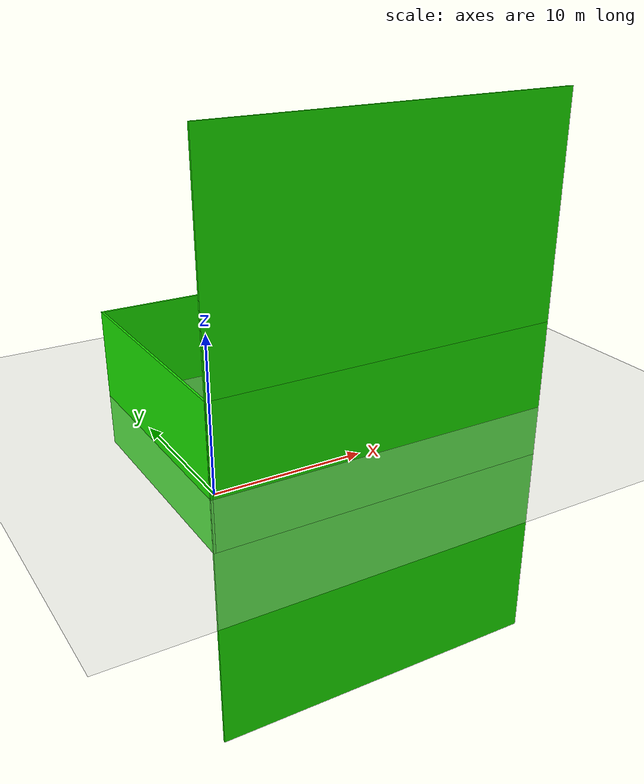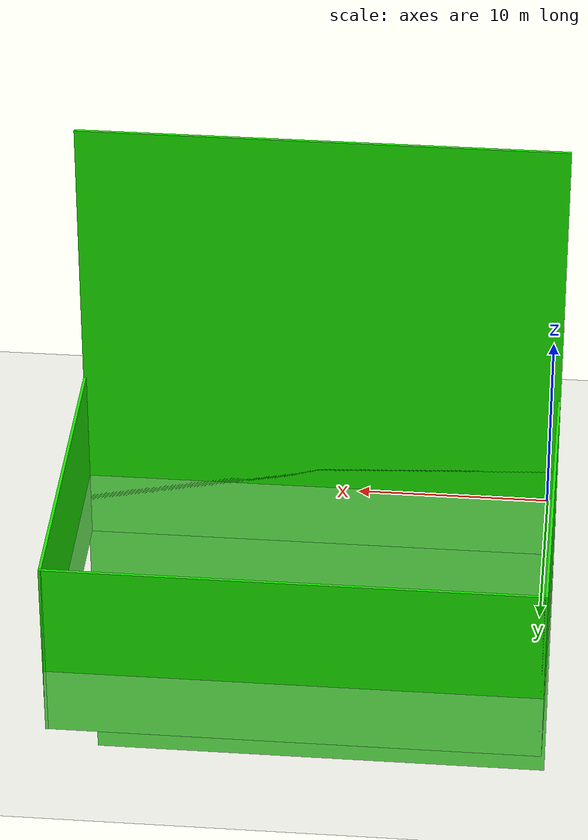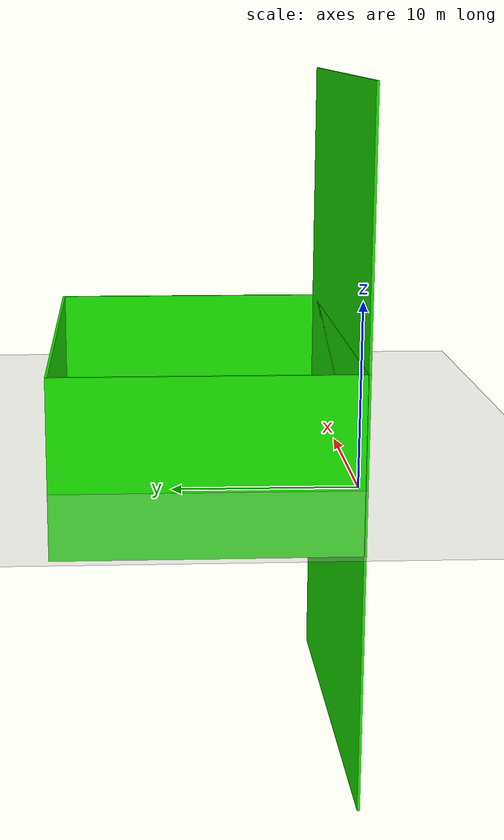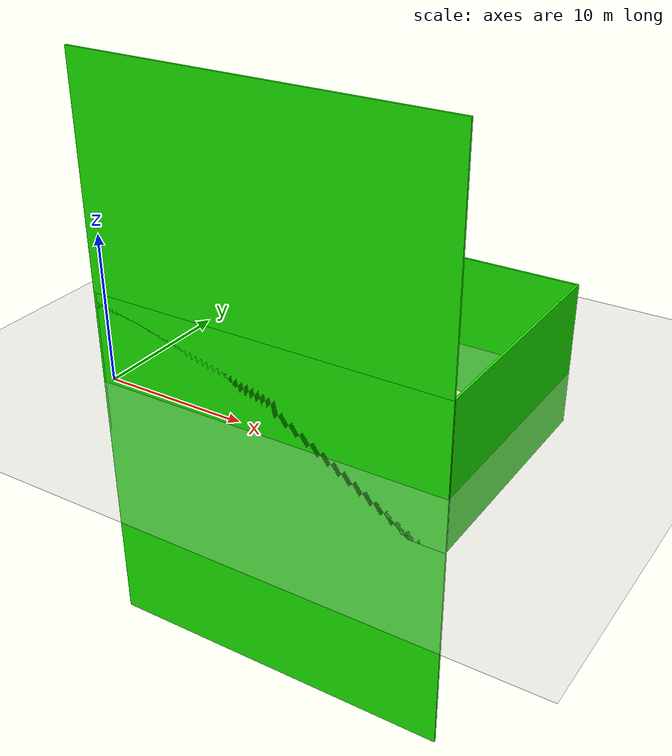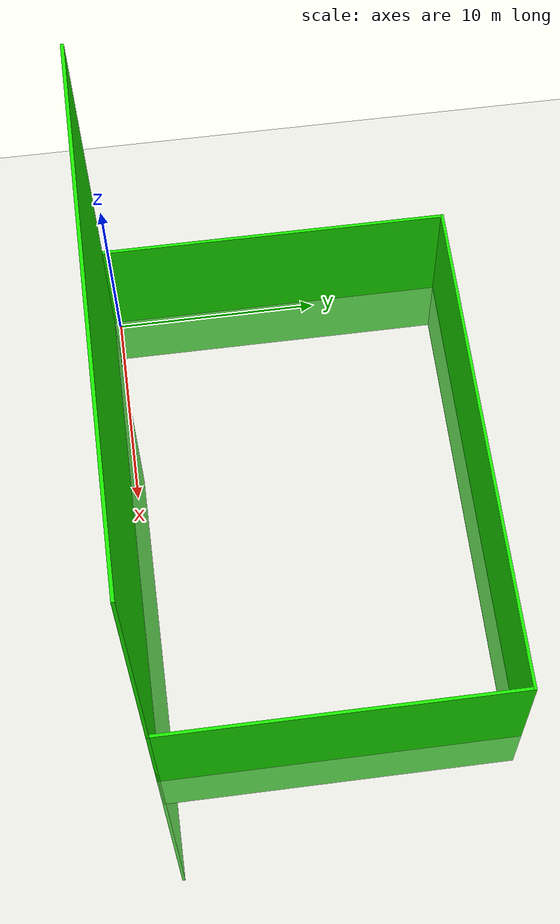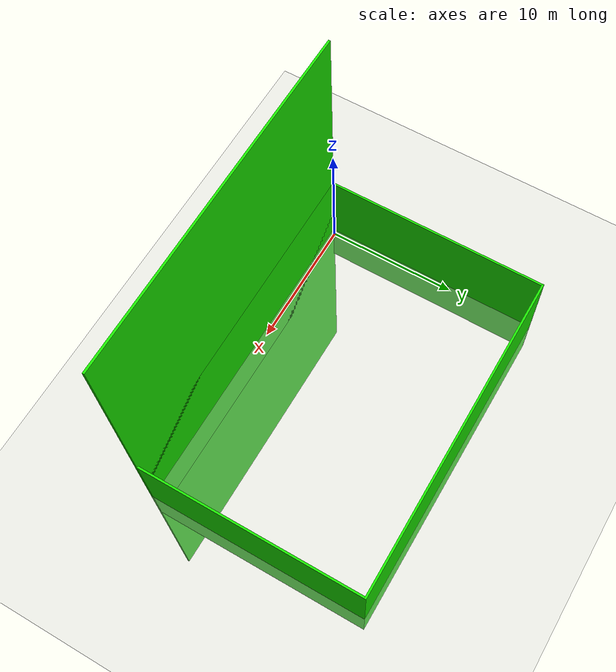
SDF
<sdf version="1.7">
 <world name="default">
  <light name="sun" type="directional">
   <pose>0 0 10 0 -0 0</pose>
   <diffuse>0.8 0.8 0.8 1</diffuse>
   <specular>0.2 0.2 0.2 1</specular>
   <attenuation>
    <range>1000</range>
    <constant>0.9</constant>
    <linear>0.01</linear>
    <quadratic>0.001</quadratic>
   </attenuation>
   <direction>-0.5 0.1 -0.9</direction>
   <spot><inner_angle>0</inner_angle><outer_angle>0</outer_angle><falloff>0</falloff></spot>
  </light>
  <model name="ground_plane">
   <static>1</static>
   <link name="link">
    <collision name="collision">
     <geometry><plane><normal>0 0 1</normal><size>100 100</size></plane></geometry>
     <surface>
      <contact><collide_bitmask>65535</collide_bitmask></contact>
      <friction><ode><mu>100</mu><mu2>50</mu2></ode></friction>
     </surface>
    </collision>
    <visual name="visual">
     <cast_shadows>0</cast_shadows>
     <geometry><plane><normal>0 0 1</normal><size>100 100</size></plane></geometry>
     <material>
      <script><uri>file://media/materials/scripts/gazebo.material</uri><name>Gazebo/Grey</name></script>
     </material>
    </visual>
   </link>
  </model>
  <gravity>0 0 -9.8</gravity>
  <magnetic_field>6e-06 2.3e-05 -4.2e-05</magnetic_field>
  <atmosphere type="adiabatic"/>
  <physics type="ode">
   <max_step_size>0.001</max_step_size>
   <real_time_factor>1</real_time_factor>
   <real_time_update_rate>1000</real_time_update_rate>
  </physics>
  <scene><ambient>0.4 0.4 0.4 1</ambient><background>0.7 0.7 0.7 1</background><shadows>1</shadows></scene>
  <audio><device>default</device></audio>
  <spherical_coordinates>
   <surface_model>EARTH_WGS84</surface_model>
   <latitude_deg>0</latitude_deg>
   <longitude_deg>0</longitude_deg>
   <elevation>0</elevation>
   <heading_deg>0</heading_deg>
  </spherical_coordinates>
  <model name="boundary_walls">
   <pose>12.0334 8.04262 0 0 -0 0</pose>
   <link name="Wall_1">
    <collision name="Wall_1_Collision">
     <geometry><box><size>17 0.15 10</size></box></geometry>
     <pose>0 0 1.25 0 -0 0</pose>
    </collision>
    <visual name="Wall_1_Visual">
     <pose>0 0 1.25 0 -0 0</pose>
     <geometry><box><size>17 0.15 10</size></box></geometry>
     <material>
      <script><uri>file://media/materials/scripts/gazebo.material</uri><name>Gazebo/Grey</name></script>
      <ambient>0.1 0.9 0.0 1</ambient>
     </material>
     <meta><layer>0</layer></meta>
    </visual>
    <pose>-12.425 0 0 0 -0 1.5708</pose>
   </link>
   <link name="Wall_2">
    <collision name="Wall_2_Collision">
     <geometry><box><size>25 0.15 10</size></box></geometry>
     <pose>0 0 1.25 0 -0 0</pose>
    </collision>
    <visual name="Wall_2_Visual">
     <pose>0 0 1.25 0 -0 0</pose>
     <geometry><box><size>25 0.15 10</size></box></geometry>
     <material>
      <script><uri>file://media/materials/scripts/gazebo.material</uri><name>Gazebo/Grey</name></script>
      <ambient>0.1 0.9 0.0 1</ambient>
     </material>
     <meta><layer>0</layer></meta>
    </visual>
    <pose>0 8.425 0 0 -0 0</pose>
   </link>
   <link name="Wall_5">
    <collision name="Wall_5_Collision">
     <geometry><box><size>17 0.15 10</size></box></geometry>
     <pose>0 0 1.25 0 -0 0</pose>
    </collision>
    <visual name="Wall_5_Visual">
     <pose>0 0 1.25 0 -0 0</pose>
     <geometry><box><size>17 0.15 10</size></box></geometry>
     <material>
      <script><uri>file://media/materials/scripts/gazebo.material</uri><name>Gazebo/Grey</name></script>
      <ambient>0.1 0.9 0.0 1</ambient>
     </material>
     <meta><layer>0</layer></meta>
    </visual>
    <pose>12.425 0 0 0 -0 -1.5708</pose>
   </link>
   <link name="Wall_6">
    <collision name="Wall_6_Collision">
     <geometry><box><size>25 0.15 10</size></box></geometry>
     <pose>0 0 1.25 0 -0 0</pose>
    </collision>
    <visual name="Wall_6_Visual">
     <pose>0 0 1.25 0 -0 0</pose>
     <geometry><box><size>25 0.15 10</size></box></geometry>
     <material>
      <script><uri>file://media/materials/scripts/gazebo.material</uri><name>Gazebo/Grey</name></script>
      <ambient>0.1 0.9 0.0 1</ambient>
     </material>
     <meta><layer>0</layer></meta>
    </visual>
    <pose>0 -8.425 0 0 -0 3.14159</pose>
   </link>
   <link name="Wall_10">
    <collision name="Wall_10_Collision">
     <geometry><box><size>25 0.15 10</size></box></geometry>
     <pose>0 0 1.25 0 -0 0</pose>
    </collision>
    <visual name="Wall_10_Visual">
     <pose>0 0 1.25 0 -0 0</pose>
     <geometry><box><size>25 0.15 40</size></box></geometry>
     <material>
      <script><uri>file://media/materials/scripts/gazebo.material</uri><name>Gazebo/Grey</name></script>
      <ambient>0.1 0.9 0.0 1</ambient>
     </material>
     <meta><layer>0</layer></meta>
    </visual>
    <pose>0 -8.425 0 0 -0 3.14159</pose>
   </link>
   <static>1</static>
  </model>
 </world>
</sdf>
